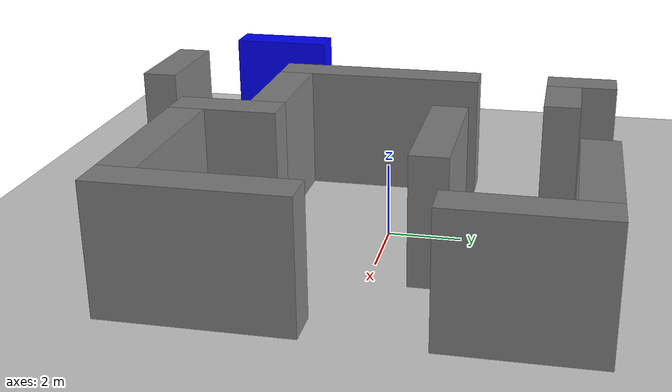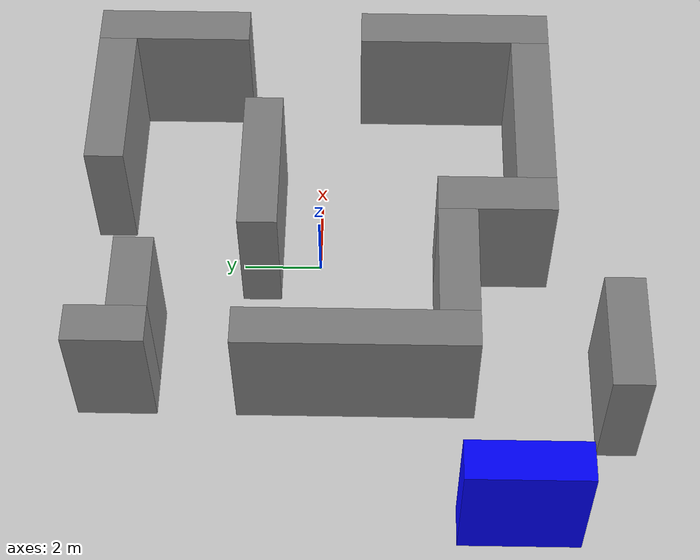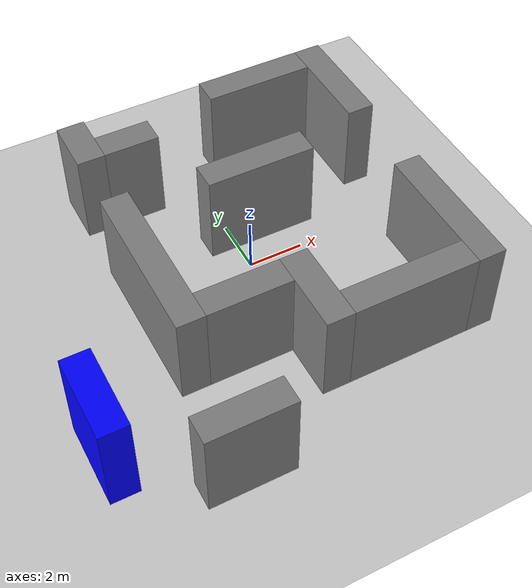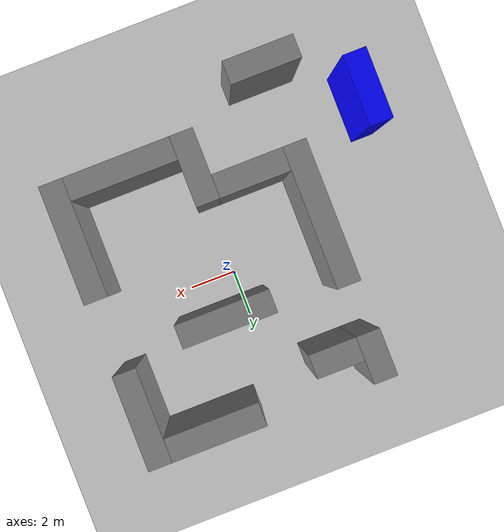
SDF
<?xml version="1.0" ?>
<!--
  Demo world with a widget displaying images coming from a camera sensor.
-->
<sdf version="1.6">
  <world name="camera_sensor">
    <physics name="1ms" type="ignored">
      <max_step_size>0.01</max_step_size>
      <real_time_factor>1.0</real_time_factor>
    </physics>
    <plugin
      filename="gz-sim-physics-system"
      name="gz::sim::systems::Physics">
    </plugin>
    <plugin
      filename="gz-sim-sensors-system"
      name="gz::sim::systems::Sensors">
      <render_engine>ogre2</render_engine>
    </plugin>
    <plugin
      filename="gz-sim-user-commands-system"
      name="gz::sim::systems::UserCommands">
    </plugin>
    <plugin
      filename="gz-sim-scene-broadcaster-system"
      name="gz::sim::systems::SceneBroadcaster">
    </plugin>

    <scene>
      <ambient>1.0 1.0 1.0</ambient>
      <background>0.8 0.8 0.8</background>
      <grid>true</grid>
    </scene>

    <gui fullscreen="0">

      <!-- 3D scene -->
      <plugin filename="MinimalScene" name="3D View">
        <gz-gui>
          <title>3D View</title>
          <property type="bool" key="showTitleBar">false</property>
          <property type="string" key="state">docked</property>
        </gz-gui>

        <engine>ogre2</engine>
        <scene>scene</scene>
        <ambient_light>0.4 0.4 0.4</ambient_light>
        <background_color>0.8 0.8 0.8</background_color>
        <camera_pose>-6 0 6 0 0.5 0</camera_pose>
      </plugin>

      <!-- Plugins that add functionality to the scene -->

      <plugin filename="GzSceneManager" name="Scene Manager">
        <gz-gui>
          <property key="resizable" type="bool">false</property>
          <property key="width" type="double">5</property>
          <property key="height" type="double">5</property>
          <property key="state" type="string">floating</property>
          <property key="showTitleBar" type="bool">false</property>
        </gz-gui>
      </plugin>
      <plugin filename="InteractiveViewControl" name="Interactive view control">
        <gz-gui>
          <property key="resizable" type="bool">false</property>
          <property key="width" type="double">5</property>
          <property key="height" type="double">5</property>
          <property key="state" type="string">floating</property>
          <property key="showTitleBar" type="bool">false</property>
        </gz-gui>
      </plugin>

      <!-- World statistics -->
      <plugin filename="WorldStats" name="World stats">

        <sim_time>true</sim_time>
        <real_time>true</real_time>
        <real_time_factor>true</real_time_factor>
        <iterations>true</iterations>
      </plugin>

    </gui>

     <model name="ground_plane">
      <static>true</static>
      <link name="link">
        <collision name="collision">
          <geometry>
            <plane>
              <normal>0 0 1</normal>
              <size>100 100</size>
            </plane>
          </geometry>
        </collision>
        <visual name="visual">
          <geometry>
            <plane>
              <normal>0 0 1</normal>
              <size>100 100</size>
            </plane>
          </geometry>
          <material>
            <ambient>0.8 0.8 0.8 1</ambient>
            <diffuse>0.8 0.8 0.8 1</diffuse>
            <specular>0.8 0.8 0.8 1</specular>
          </material>
        </visual>
      </link>
    </model>

    <model name="box1">
      <pose>5.5 4 1.72 0 0 0</pose>
      <link name="box_link1">
        <inertial>
          <inertia>
            <ixx>0.16666</ixx>
            <ixy>0</ixy>
            <ixz>0</ixz>
            <iyy>0.16666</iyy>
            <iyz>0</iyz>
            <izz>0.16666</izz>
          </inertia>
          <mass>100.0</mass>
        </inertial>
        <collision name="box_collision1">
          <geometry>
            <box>
              <size>1 4 3.5</size>
            </box>
          </geometry>
        </collision>

        <visual name="box_visual1">
          <geometry>
            <box>
              <size>1 4 3.5</size>
            </box>
          </geometry>
          <material>
            <ambient>0.5 0.5 0.5 1</ambient>
            <diffuse>0.5 0.5 0.5 1</diffuse>
            <specular>0.5 0.5 0.5 1</specular>
          </material>
        </visual>
      </link>
    </model>

    <model name="box2">
      <pose>3 5.5 1.72 0 0 0</pose>
      <link name="box_link2">
        <inertial>
          <inertia>
            <ixx>0.16666</ixx>
            <ixy>0</ixy>
            <ixz>0</ixz>
            <iyy>0.16666</iyy>
            <iyz>0</iyz>
            <izz>0.16666</izz>
          </inertia>
          <mass>100.0</mass>
        </inertial>
        <collision name="box_collision2">
          <geometry>
            <box>
              <size>4 1 3.5</size>
            </box>
          </geometry>
        </collision>

        <visual name="box_visual2">
          <geometry>
            <box>
              <size>4 1 3.5</size>
            </box>
          </geometry>
          <material>
            <ambient>0.5 0.5 0.5 1</ambient>
             <diffuse>0.5 0.5 0.5 1</diffuse>
            <specular>0.5 0.5 0.5 1</specular>
          </material>
        </visual>
      </link>
    </model>

    <model name="box3">
      <pose>1 1.5 1.72 0 0 1.57</pose>
      <link name="box_link3">
        <inertial>
          <inertia>
            <ixx>0.16666</ixx>
            <ixy>0</ixy>
            <ixz>0</ixz>
            <iyy>0.16666</iyy>
            <iyz>0</iyz>
            <izz>0.16666</izz>
          </inertia>
          <mass>100.0</mass>
        </inertial>
        <collision name="box_collision3">
          <geometry>
            <box>
              <size>1 4 3.5</size>
            </box>
          </geometry>
        </collision>

        <visual name="box_visual3">
          <geometry>
            <box>
              <size>1 4 3.5</size>
            </box>
          </geometry>
          <material>
            <ambient>0.5 0.5 0.5 1</ambient>
             <diffuse>0.5 0.5 0.5 1</diffuse>
            <specular>0.5 0.5 0.5 1</specular>
          </material>
        </visual>
      </link>
    </model>

    <model name="box4">
      <pose>5.5 -3.5 1.72 0 0 1.57</pose>
      <link name="box_link4">
        <inertial>
          <inertia>
            <ixx>0.16666</ixx>
            <ixy>0</ixy>
            <ixz>0</ixz>
            <iyy>0.16666</iyy>
            <iyz>0</iyz>
            <izz>0.16666</izz>
          </inertia>
          <mass>100.0</mass>
        </inertial>
        <collision name="box_collision4">
          <geometry>
            <box>
              <size>5 1 3.5</size>
            </box>
          </geometry>
        </collision>

        <visual name="box_visual4">
          <geometry>
            <box>
              <size>5 1 3.5</size>
            </box>
          </geometry>
          <material>
            <ambient>0.5 0.5 0.5 1</ambient>
             <diffuse>0.5 0.5 0.5 1</diffuse>
            <specular>0.5 0.5 0.5 1</specular>
          </material>
        </visual>
      </link>
    </model>

    <model name="box5">
      <pose>-4 -1 1.72 0 0 0</pose>
      <link name="box_link5">
        <inertial>
          <inertia>
            <ixx>0.16666</ixx>
            <ixy>0</ixy>
            <ixz>0</ixz>
            <iyy>0.16666</iyy>
            <iyz>0</iyz>
            <izz>0.16666</izz>
          </inertia>
          <mass>100.0</mass>
        </inertial>
        <collision name="box_collision5">
          <geometry>
            <box>
              <size>1 6 3.5</size>
            </box>
          </geometry>
        </collision>

        <visual name="box_visual5">
          <geometry>
            <box>
              <size>1 6 3.5</size>
            </box>
          </geometry>
          <material>
            <ambient>0.5 0.5 0.5 1</ambient>
             <diffuse>0.5 0.5 0.5 1</diffuse>
            <specular>0.5 0.5 0.5 1</specular>
          </material>
        </visual>
      </link>
    </model>

    <model name="box6">
      <pose>-4 5 1.72 0 0 0</pose>
      <link name="box_link6">
        <inertial>
          <inertia>
            <ixx>0.16666</ixx>
            <ixy>0</ixy>
            <ixz>0</ixz>
            <iyy>0.16666</iyy>
            <iyz>0</iyz>
            <izz>0.16666</izz>
          </inertia>
          <mass>100.0</mass>
        </inertial>
        <collision name="box_collision6">
          <geometry>
            <box>
              <size>1 2 3.5</size>
            </box>
          </geometry>
        </collision>

        <visual name="box_visual6">
          <geometry>
            <box>
              <size>1 2 3.5</size>
            </box>
          </geometry>
          <material>
            <ambient>0.5 0.5 0.5 1</ambient>
             <diffuse>0.5 0.5 0.5 1</diffuse>
            <specular>0.5 0.5 0.5 1</specular>
          </material>
        </visual>
      </link>
    </model>

    <model name="box10">
      <pose>-2.5 4.5 1.72 0 0 0</pose>
      <link name="box_link10">
        <inertial>
          <inertia>
            <ixx>0.16666</ixx>
            <ixy>0</ixy>
            <ixz>0</ixz>
            <iyy>0.16666</iyy>
            <iyz>0</iyz>
            <izz>0.16666</izz>
          </inertia>
          <mass>100.0</mass>
        </inertial>
        <collision name="box_collision10">
          <geometry>
            <box>
              <size>2 1 3.5</size>
            </box>
          </geometry>
        </collision>

        <visual name="box_visual10">
          <geometry>
            <box>
              <size>2 1 3.5</size>
            </box>
          </geometry>
          <material>
            <ambient>0.5 0.5 0.5 1</ambient>
             <diffuse>0.5 0.5 0.5 1</diffuse>
            <specular>0.5 0.5 0.5 1</specular>
          </material>
        </visual>
      </link>
    </model>

     <model name="box7">
      <pose>0 -4.5 1.72 0 0 0</pose>
      <link name="box_link7">
        <inertial>
          <inertia>
            <ixx>0.16666</ixx>
            <ixy>0</ixy>
            <ixz>0</ixz>
            <iyy>0.16666</iyy>
            <iyz>0</iyz>
            <izz>0.16666</izz>
          </inertia>
          <mass>100.0</mass>
        </inertial>
        <collision name="box_collision7">
          <geometry>
            <box>
              <size>1 3 3.5</size>
            </box>
          </geometry>
        </collision>

        <visual name="box_visual7">
          <geometry>
            <box>
              <size>1 3 3.5</size>
            </box>
          </geometry>
          <material>
            <ambient>0.5 0.5 0.5 1</ambient>
             <diffuse>0.5 0.5 0.5 1</diffuse>
            <specular>0.5 0.5 0.5 1</specular>
          </material>
        </visual>
      </link>
    </model>

    <model name="box8">
      <pose>-2 -3.5 1.72 0 0 0</pose>
      <link name="box_link8">
        <inertial>
          <inertia>
            <ixx>0.16666</ixx>
            <ixy>0</ixy>
            <ixz>0</ixz>
            <iyy>0.16666</iyy>
            <iyz>0</iyz>
            <izz>0.16666</izz>
          </inertia>
          <mass>100.0</mass>
        </inertial>
        <collision name="box_collision8">
          <geometry>
            <box>
              <size>3 1 3.5</size>
            </box>
          </geometry>
        </collision>

        <visual name="box_visual8">
          <geometry>
            <box>
              <size>3 1 3.5</size>
            </box>
          </geometry>
          <material>
            <ambient>0.5 0.5 0.5 1</ambient>
             <diffuse>0.5 0.5 0.5 1</diffuse>
            <specular>0.5 0.5 0.5 1</specular>
          </material>
        </visual>
      </link>
    </model>

    <model name="box9">
      <pose>2.75 -5.5 1.72 0 0 0</pose>
      <link name="box_link9">
        <inertial>
          <inertia>
            <ixx>0.16666</ixx>
            <ixy>0</ixy>
            <ixz>0</ixz>
            <iyy>0.16666</iyy>
            <iyz>0</iyz>
            <izz>0.16666</izz>
          </inertia>
          <mass>100.0</mass>
        </inertial>
        <collision name="box_collision9">
          <geometry>
            <box>
              <size>4.5 1 3.5</size>
            </box>
          </geometry>
        </collision>

        <visual name="box_visual9">
          <geometry>
            <box>
              <size>4.5 1 3.5</size>
            </box>
          </geometry>
          <material>
            <ambient>0.5 0.5 0.5 1</ambient>
             <diffuse>0.5 0.5 0.5 1</diffuse>
            <specular>0.5 0.5 0.5 1</specular>
          </material>
        </visual>
      </link>
    </model>

    <model name="box11">
      <pose>-7.5 -5 1.72 0 0 0</pose>
      <link name="box_link11">
        <inertial>
          <inertia>
            <ixx>0.16666</ixx>
            <ixy>0</ixy>
            <ixz>0</ixz>
            <iyy>0.16666</iyy>
            <iyz>0</iyz>
            <izz>0.16666</izz>
          </inertia>
          <mass>100.0</mass>
        </inertial>
        <collision name="box_collision11">
          <geometry>
            <box>
              <size>1 3 3.5</size>
            </box>
          </geometry>
        </collision>

        <visual name="box_visual11">
          <geometry>
            <box>
              <size>1 3 3.5</size>
            </box>
          </geometry>
          <material>
            <ambient>0 0 1 1</ambient>
            <diffuse>0 0 1 1</diffuse>
            <specular>0 0 1 1</specular>
          </material>
        </visual>
      </link>
    </model>

    <model name="box12">
      <pose>-4 -7.5 1.72 0 0 0</pose>
      <link name="box_link12">
        <inertial>
          <inertia>
            <ixx>0.16666</ixx>
            <ixy>0</ixy>
            <ixz>0</ixz>
            <iyy>0.16666</iyy>
            <iyz>0</iyz>
            <izz>0.16666</izz>
          </inertia>
          <mass>100.0</mass>
        </inertial>
        <collision name="box_collision12">
          <geometry>
            <box>
              <size>3 1 3.5</size>
            </box>
          </geometry>
        </collision>

        <visual name="box_visual12">
          <geometry>
            <box>
              <size>3 1 3.5</size>
            </box>
          </geometry>
          <material>
            <ambient>0.5 0.5 0.5 1</ambient>
             <diffuse>0.5 0.5 0.5 1</diffuse>
            <specular>0.5 0.5 0.5 1</specular>
          </material>
        </visual>
      </link>
    </model>

  </world>
</sdf>
